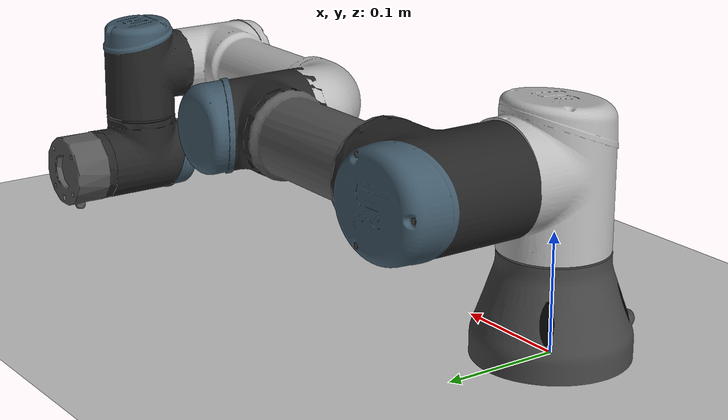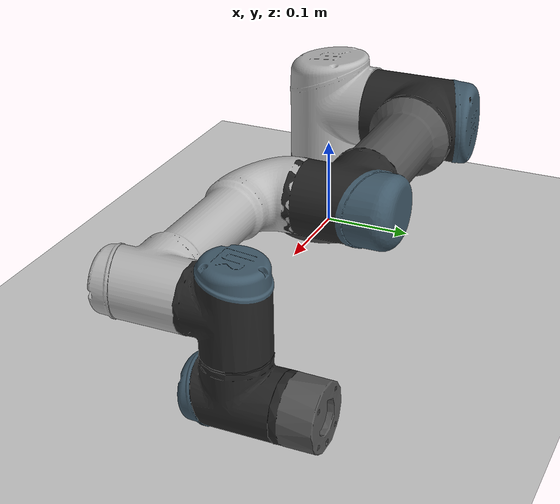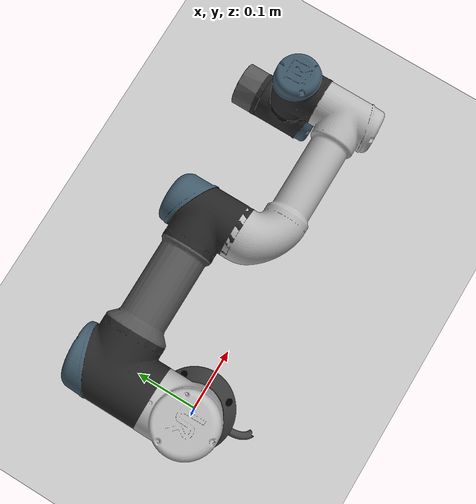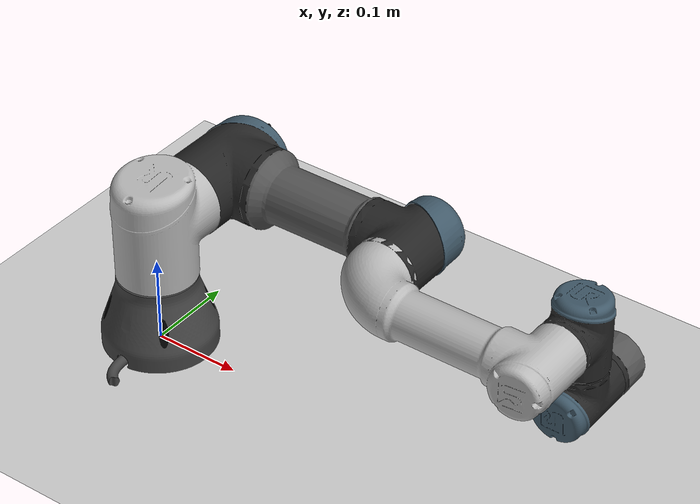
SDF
<?xml version="1.0"?>
<sdf version="1.6">
  <world name="default">

    <include>
      <uri>model://sun</uri>
    </include>

    <include>
      <uri>model://ground_plane</uri>
    </include>

    <include>
      <uri>model://ur3</uri>
    </include>

  </world>
</sdf>

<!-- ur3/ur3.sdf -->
<sdf version='1.7'>
  <model name='ur3_robot'>
    <link name='base_link'>
      <inertial>
        <pose>0 0 0 0 -0 0</pose>
        <mass>2</mass>
        <inertia>
          <ixx>0.00305317</ixx>
          <ixy>0</ixy>
          <ixz>0</ixz>
          <iyy>0.00305317</iyy>
          <iyz>0</iyz>
          <izz>0.005625</izz>
        </inertia>
      </inertial>
      <collision name='base_link_inertia_collision'>
        <pose>0 0 0 0 0 -0</pose>
        <geometry>
          <mesh>
            <scale>1 1 1</scale>
            <uri>model://ur_description/meshes/ur3/collision/base.stl</uri>
          </mesh>
        </geometry>
      </collision>
      <visual name='base_link_inertia_visual'>
        <pose>0 0 0 0 0 -0</pose>
        <geometry>
          <mesh>
            <scale>1 1 1</scale>
            <uri>model://ur_description/meshes/ur3/visual/base.dae</uri>
          </mesh>
        </geometry>
      </visual>
    </link>
    <joint name='shoulder_pan_joint' type='revolute'>
      <pose relative_to='base_link'>0 0 0.1519 0 -0 3.14159</pose>
      <parent>base_link</parent>
      <child>shoulder_link</child>
      <axis>
        <xyz>0 0 1</xyz>
        <limit>
          <lower>-6.28319</lower>
          <upper>6.28319</upper>
          <effort>56</effort>
          <velocity>3.14159</velocity>
        </limit>
        <dynamics>
          <damping>0</damping>
          <friction>0</friction>
          <spring_reference>0</spring_reference>
          <spring_stiffness>0</spring_stiffness>
        </dynamics>
      </axis>
    </joint>
    <link name='shoulder_link'>
      <pose relative_to='shoulder_pan_joint'>0 0 0 0 -0 0</pose>
      <inertial>
        <pose>0 0 -0.02 0 -0 0</pose>
        <mass>2</mass>
        <inertia>
          <ixx>0.00809317</ixx>
          <ixy>0</ixy>
          <ixz>0</ixz>
          <iyy>0.00809317</iyy>
          <iyz>0</iyz>
          <izz>0.005625</izz>
        </inertia>
      </inertial>
      <collision name='shoulder_link_collision'>
        <pose>0 0 0 0 -0 3.14159</pose>
        <geometry>
          <mesh>
            <scale>1 1 1</scale>
            <uri>model://ur_description/meshes/ur3/collision/shoulder.stl</uri>
          </mesh>
        </geometry>
      </collision>
      <visual name='shoulder_link_visual'>
        <pose>0 0 0 0 -0 3.14159</pose>
        <geometry>
          <mesh>
            <scale>1 1 1</scale>
            <uri>model://ur_description/meshes/ur3/visual/shoulder.dae</uri>
          </mesh>
        </geometry>
      </visual>
    </link>
    <joint name='shoulder_lift_joint' type='revolute'>
      <pose relative_to='shoulder_link'>0 0 0 1.5708 -0 0</pose>
      <parent>shoulder_link</parent>
      <child>upper_arm_link</child>
      <axis>
        <xyz>0 0 1</xyz>
        <limit>
          <lower>-6.28319</lower>
          <upper>6.28319</upper>
          <effort>56</effort>
          <velocity>3.14159</velocity>
        </limit>
        <dynamics>
          <damping>0</damping>
          <friction>0</friction>
          <spring_reference>0</spring_reference>
          <spring_stiffness>0</spring_stiffness>
        </dynamics>
      </axis>
    </joint>
    <link name='upper_arm_link'>
      <pose relative_to='shoulder_lift_joint'>0 0 0 0 -0 0</pose>
      <inertial>
        <pose>-0.11365 0 0.1157 0 1.5708 0</pose>
        <mass>3.42</mass>
        <inertia>
          <ixx>0.0217285</ixx>
          <ixy>0</ixy>
          <ixz>0</ixz>
          <iyy>0.0217285</iyy>
          <iyz>0</iyz>
          <izz>0.00961875</izz>
        </inertia>
      </inertial>
      <collision name='upper_arm_link_collision'>
        <pose>0 0 0.1198 1.5708 0 -1.5708</pose>
        <geometry>
          <mesh>
            <scale>1 1 1</scale>
            <uri>model://ur_description/meshes/ur3/collision/upperarm.stl</uri>
          </mesh>
        </geometry>
      </collision>
      <visual name='upper_arm_link_visual'>
        <pose>0 0 0.1198 1.5708 0 -1.5708</pose>
        <geometry>
          <mesh>
            <scale>1 1 1</scale>
            <uri>model://ur_description/meshes/ur3/visual/upperarm.dae</uri>
          </mesh>
        </geometry>
      </visual>
    </link>
    <joint name='elbow_joint' type='revolute'>
      <pose relative_to='upper_arm_link'>-0.24365 0 0 0 -0 0</pose>
      <parent>upper_arm_link</parent>
      <child>forearm_link</child>
      <axis>
        <xyz>0 0 1</xyz>
        <limit>
          <lower>-3.14159</lower>
          <upper>3.14159</upper>
          <effort>28</effort>
          <velocity>3.14159</velocity>
        </limit>
        <dynamics>
          <damping>0</damping>
          <friction>0</friction>
          <spring_reference>0</spring_reference>
          <spring_stiffness>0</spring_stiffness>
        </dynamics>
      </axis>
    </joint>
    <link name='forearm_link'>
      <pose relative_to='elbow_joint'>0 0 0 0 -0 0</pose>
      <inertial>
        <pose>-0.16325 0 0.0238 0 1.5708 0</pose>
        <mass>1.26</mass>
        <inertia>
          <ixx>0.00654681</ixx>
          <ixy>0</ixy>
          <ixz>0</ixz>
          <iyy>0.00654681</iyy>
          <iyz>0</iyz>
          <izz>0.00354375</izz>
        </inertia>
      </inertial>
      <collision name='forearm_link_collision'>
        <pose>0 0 0.0275 1.5708 0 -1.5708</pose>
        <geometry>
          <mesh>
            <scale>1 1 1</scale>
            <uri>model://ur_description/meshes/ur3/collision/forearm.stl</uri>
          </mesh>
        </geometry>
      </collision>
      <visual name='forearm_link_visual'>
        <pose>0 0 0.0275 1.5708 0 -1.5708</pose>
        <geometry>
          <mesh>
            <scale>1 1 1</scale>
            <uri>model://ur_description/meshes/ur3/visual/forearm.dae</uri>
          </mesh>
        </geometry>
      </visual>
    </link>
    <joint name='wrist_1_joint' type='revolute'>
      <pose relative_to='forearm_link'>-0.21325 0 0.11235 0 -0 0</pose>
      <parent>forearm_link</parent>
      <child>wrist_1_link</child>
      <axis>
        <xyz>0 0 1</xyz>
        <limit>
          <lower>-6.28319</lower>
          <upper>6.28319</upper>
          <effort>12</effort>
          <velocity>6.28319</velocity>
        </limit>
        <dynamics>
          <damping>0</damping>
          <friction>0</friction>
          <spring_reference>0</spring_reference>
          <spring_stiffness>0</spring_stiffness>
        </dynamics>
      </axis>
    </joint>
    <link name='wrist_1_link'>
      <pose relative_to='wrist_1_joint'>0 0 0 0 -0 0</pose>
      <inertial>
        <pose>0 -0.01 0 0 -0 0</pose>
        <mass>0.8</mass>
        <inertia>
          <ixx>0.00161064</ixx>
          <ixy>0</ixy>
          <ixz>0</ixz>
          <iyy>0.00161064</iyy>
          <iyz>0</iyz>
          <izz>0.00225</izz>
        </inertia>
      </inertial>
      <collision name='wrist_1_link_collision'>
        <pose>0 0 -0.085 1.5708 -0 0</pose>
        <geometry>
          <mesh>
            <scale>1 1 1</scale>
            <uri>model://ur_description/meshes/ur3/collision/wrist1.stl</uri>
          </mesh>
        </geometry>
      </collision>
      <visual name='wrist_1_link_visual'>
        <pose>0 0 -0.085 1.5708 -0 0</pose>
        <geometry>
          <mesh>
            <scale>1 1 1</scale>
            <uri>model://ur_description/meshes/ur3/visual/wrist1.dae</uri>
          </mesh>
        </geometry>
      </visual>
    </link>
    <joint name='wrist_2_joint' type='revolute'>
      <pose relative_to='wrist_1_link'>0 -0.08535 -0 1.5708 -0 0</pose>
      <parent>wrist_1_link</parent>
      <child>wrist_2_link</child>
      <axis>
        <xyz>0 0 1</xyz>
        <limit>
          <lower>-6.28319</lower>
          <upper>6.28319</upper>
          <effort>12</effort>
          <velocity>6.28319</velocity>
        </limit>
        <dynamics>
          <damping>0</damping>
          <friction>0</friction>
          <spring_reference>0</spring_reference>
          <spring_stiffness>0</spring_stiffness>
        </dynamics>
      </axis>
    </joint>
    <link name='wrist_2_link'>
      <pose relative_to='wrist_2_joint'>0 0 0 0 -0 0</pose>
      <inertial>
        <pose>0 0.01 0 0 -0 0</pose>
        <mass>0.8</mass>
        <inertia>
          <ixx>0.00157217</ixx>
          <ixy>0</ixy>
          <ixz>0</ixz>
          <iyy>0.00157217</iyy>
          <iyz>0</iyz>
          <izz>0.00225</izz>
        </inertia>
      </inertial>
      <collision name='wrist_2_link_collision'>
        <pose>0 0 -0.083 0 -0 0</pose>
        <geometry>
          <mesh>
            <scale>1 1 1</scale>
            <uri>model://ur_description/meshes/ur3/collision/wrist2.stl</uri>
          </mesh>
        </geometry>
      </collision>
      <visual name='wrist_2_link_visual'>
        <pose>0 0 -0.083 0 -0 0</pose>
        <geometry>
          <mesh>
            <scale>1 1 1</scale>
            <uri>model://ur_description/meshes/ur3/visual/wrist2.dae</uri>
          </mesh>
        </geometry>
      </visual>
    </link>
    <joint name='wrist_3_joint' type='revolute'>
      <pose relative_to='wrist_2_link'>0 0.0819 -0 -1.5708 0 -0</pose>
      <parent>wrist_2_link</parent>
      <child>wrist_3_link</child>
      <axis>
        <xyz>0 0 1</xyz>
        <limit>
          <lower>-6.28319</lower>
          <upper>6.28319</upper>
          <effort>12</effort>
          <velocity>6.28319</velocity>
        </limit>
        <dynamics>
          <damping>0</damping>
          <friction>0</friction>
          <spring_reference>0</spring_reference>
          <spring_stiffness>0</spring_stiffness>
        </dynamics>
      </axis>
    </joint>
    <link name='wrist_3_link'>
      <pose relative_to='wrist_3_joint'>0 0 0 0 -0 0</pose>
      <inertial>
        <pose>0 0 -0.02 0 -0 0</pose>
        <mass>0.35</mass>
        <inertia>
          <ixx>0.000136267</ixx>
          <ixy>0</ixy>
          <ixz>0</ixz>
          <iyy>0.000136267</iyy>
          <iyz>0</iyz>
          <izz>0.0001792</izz>
        </inertia>
      </inertial>
      <collision name='wrist_3_link_collision'>
        <pose>0 -0.00255 -0.082 1.5708 -0 0</pose>
        <geometry>
          <mesh>
            <scale>1 1 1</scale>
            <uri>model://ur_description/meshes/ur3/collision/wrist3.stl</uri>
          </mesh>
        </geometry>
      </collision>
      <visual name='wrist_3_link_visual'>
        <pose>0 -0.00255 -0.082 1.5708 -0 0</pose>
        <geometry>
          <mesh>
            <scale>1 1 1</scale>
            <uri>model://ur_description/meshes/ur3/visual/wrist3.dae</uri>
          </mesh>
        </geometry>
      </visual>
    </link>
  </model>
</sdf>
